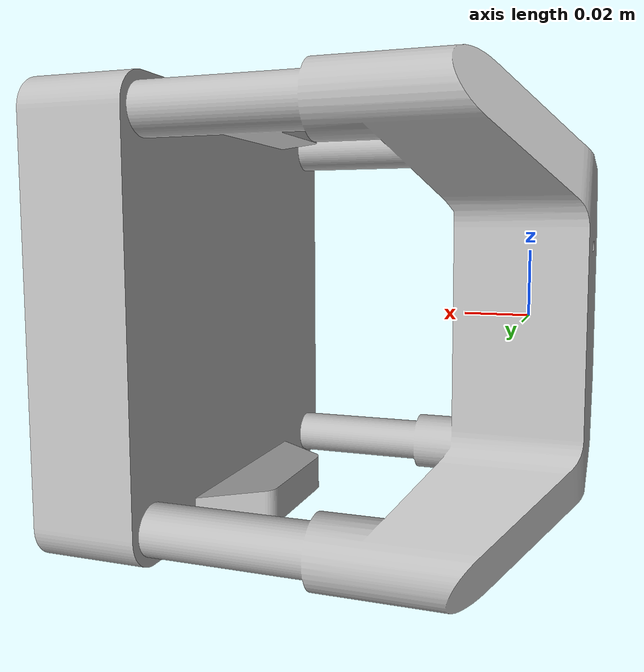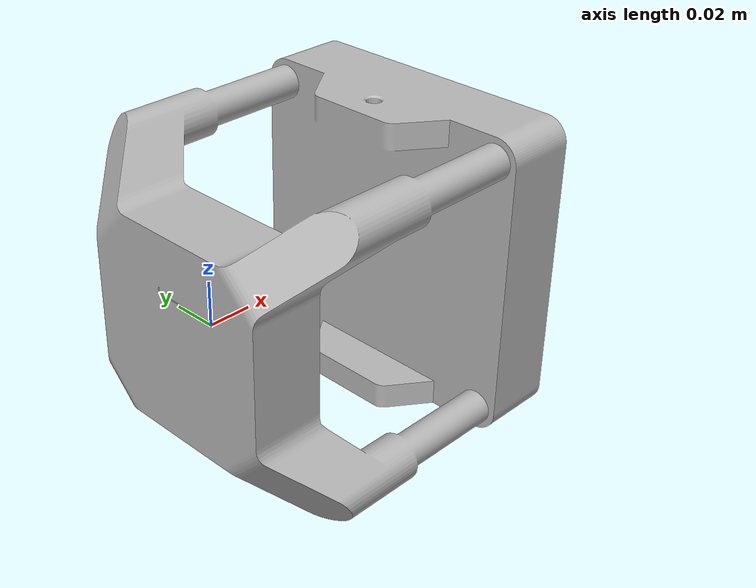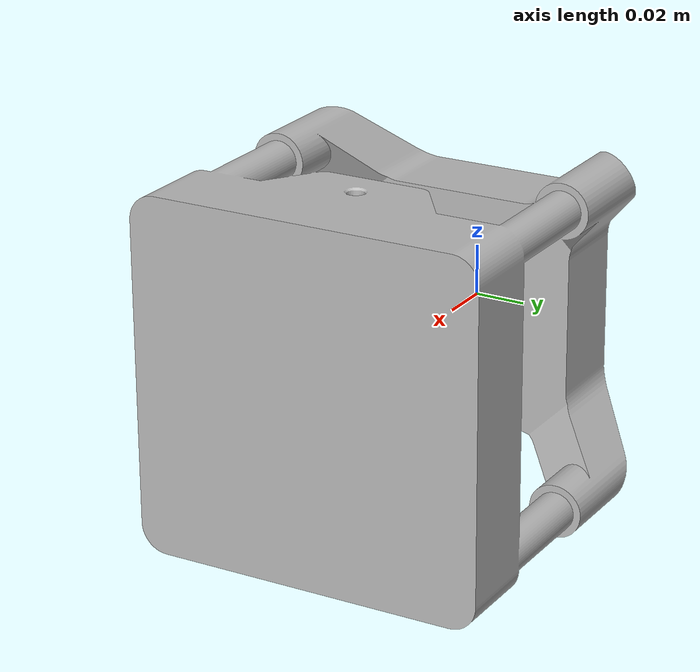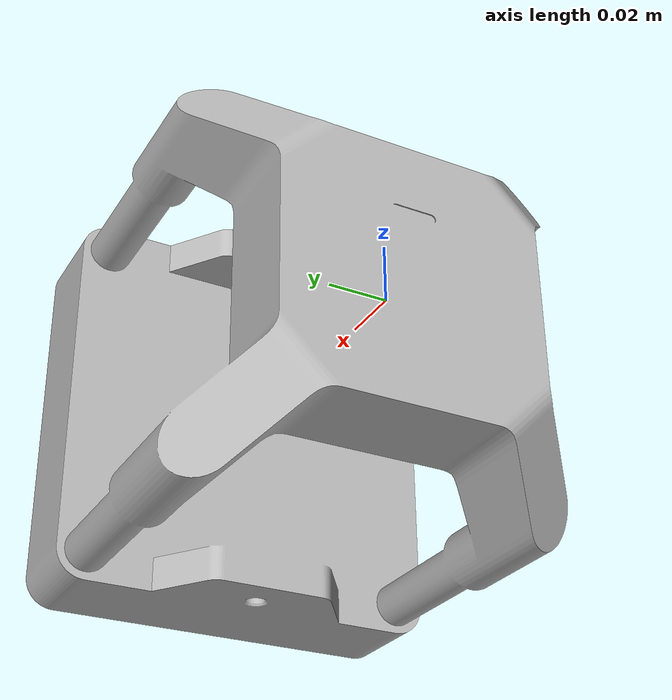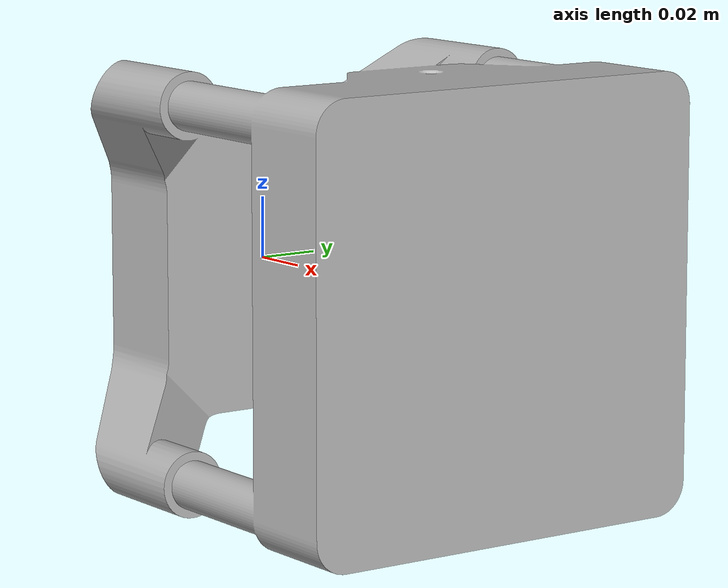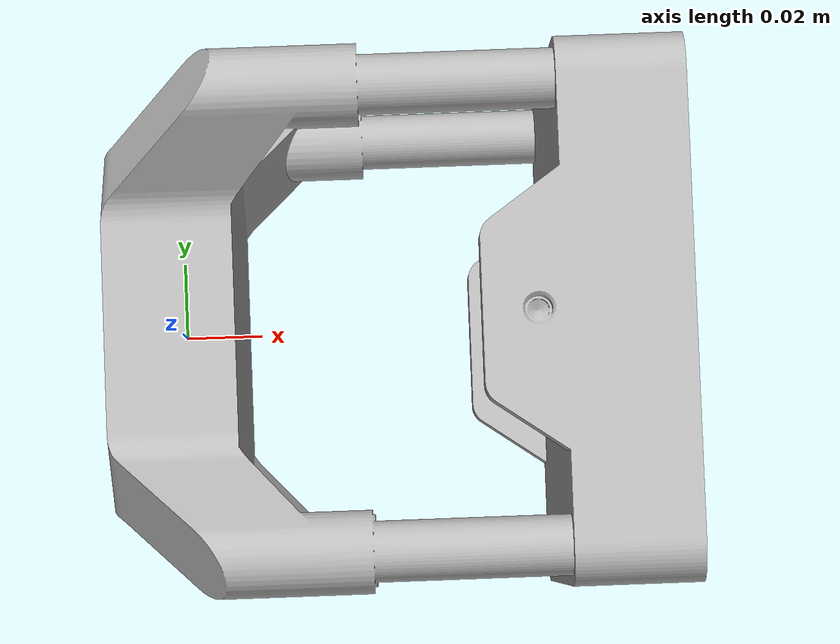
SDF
<?xml version="1.0" ?>
<sdf version="1.6">
  <model name="optitrack_prime">
    <static>true</static>
    <link name="link">
      <pose>0 0 0 0 0 0</pose>

      <sensor name="logical_camera" type="logical_camera">
          <logical_camera>
            <near>0.55</near>
            <far>2.5</far>
            <horizontal_fov>1.0</horizontal_fov>
            <aspect_ratio>1.8</aspect_ratio>
          </logical_camera>

          <visualize>true</visualize>
          <always_on>true</always_on>
          <update_rate>10</update_rate>
      </sensor>

      <collision name="collision">
      <pose>0 0 0 0 0 0</pose>
        <geometry>
          <box>
            <size>0.2 0.2 0.2</size>
          </box>
        </geometry>
      </collision>

      <visual name="truss">
        <geometry>
          <mesh>
            <uri>model://optitrack_prime/model/model.dae</uri>
            <scale>1.1 1.1 1.1</scale>
	         </mesh>
        </geometry>
     </visual>
    </link>
  </model>
</sdf>
